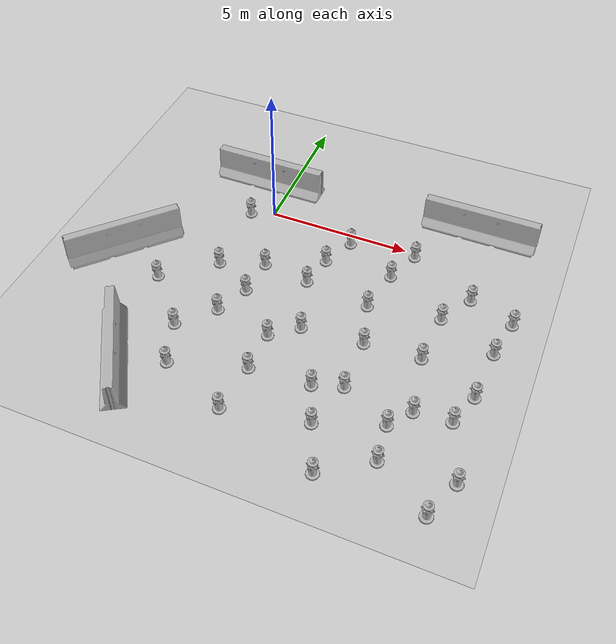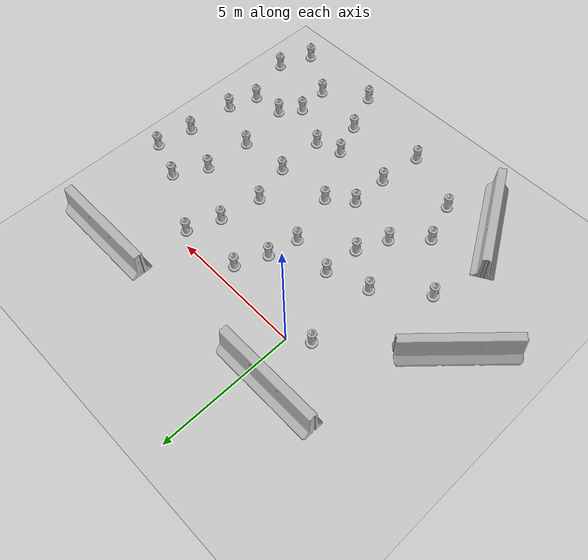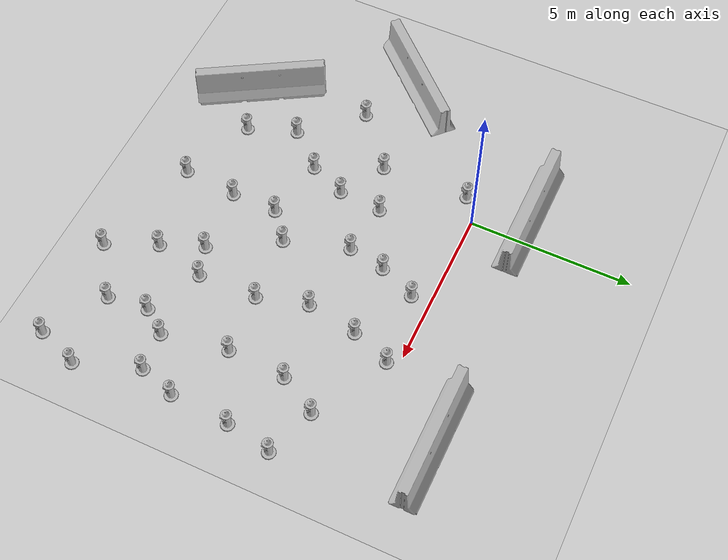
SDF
<sdf version="1.7">
 <world name="default">
  <light name="sun" type="directional">
   <pose>0 0 10 0 -0 0</pose>
   <diffuse>0.8 0.8 0.8 1</diffuse>
   <specular>0.2 0.2 0.2 1</specular>
   <attenuation>
    <range>1000</range>
    <constant>0.9</constant>
    <linear>0.01</linear>
    <quadratic>0.001</quadratic>
   </attenuation>
   <direction>-0.5 0.1 -0.9</direction>
   <spot><inner_angle>0</inner_angle><outer_angle>0</outer_angle><falloff>0</falloff></spot>
  </light>
  <model name="ground_plane">
   <static>1</static>
   <link name="link">
    <collision name="collision">
     <geometry><plane><normal>0 0 1</normal><size>100 100</size></plane></geometry>
     <surface>
      <contact><collide_bitmask>65535</collide_bitmask></contact>
      <friction><ode><mu>100</mu><mu2>50</mu2></ode></friction>
     </surface>
    </collision>
    <visual name="visual">
     <cast_shadows>0</cast_shadows>
     <geometry><plane><normal>0 0 1</normal><size>100 100</size></plane></geometry>
     <material>
      <script><uri>file://media/materials/scripts/gazebo.material</uri><name>Gazebo/Grey</name></script>
     </material>
    </visual>
   </link>
  </model>
  <gravity>0 0 -9.8</gravity>
  <magnetic_field>6e-06 2.3e-05 -4.2e-05</magnetic_field>
  <atmosphere type="adiabatic"/>
  <physics type="ode">
   <max_step_size>0.001</max_step_size>
   <real_time_factor>1</real_time_factor>
   <real_time_update_rate>1000</real_time_update_rate>
  </physics>
  <scene><ambient>0.4 0.4 0.4 1</ambient><background>0.7 0.7 0.7 1</background><shadows>1</shadows></scene>
  <spherical_coordinates>
   <surface_model>EARTH_WGS84</surface_model>
   <latitude_deg>0</latitude_deg>
   <longitude_deg>0</longitude_deg>
   <elevation>0</elevation>
   <heading_deg>0</heading_deg>
  </spherical_coordinates>
  <model name="jersey_barrier">
   <static>1</static>
   <link name="link">
    <visual name="visual">
     <geometry><mesh><uri>model://jersey_barrier/meshes/jersey_barrier.dae</uri></mesh></geometry>
    </visual>
    <collision name="upright">
     <pose>0 0 0.5715 0 -0 0</pose>
     <geometry><box><size>4.06542 0.3063 1.143</size></box></geometry>
    </collision>
    <collision name="base">
     <pose>0 0 0.032258 0 -0 0</pose>
     <geometry><box><size>4.06542 0.8107 0.064516</size></box></geometry>
    </collision>
    <collision name="base2">
     <pose>0 0 0.1 0 -0 0</pose>
     <geometry><box><size>4.06542 0.65 0.1</size></box></geometry>
    </collision>
    <collision name="base3">
     <pose>0 0 0.2 0 -0 0</pose>
     <geometry><box><size>4.06542 0.5 0.1</size></box></geometry>
    </collision>
    <collision name="left-angle">
     <pose>0 -0.224 0.2401 0.9 -0 0</pose>
     <geometry><box><size>4.06542 0.5 0.064516</size></box></geometry>
    </collision>
    <collision name="right-angle">
     <pose>0 0.224 0.2401 -0.9 0 0</pose>
     <geometry><box><size>4.06542 0.5 0.064516</size></box></geometry>
    </collision>
   </link>
   <pose>-0.80729 1.52063 0 0 -0 0</pose>
  </model>
  <model name="fire_hydrant">
   <static>1</static>
   <link name="link">
    <collision name="collision">
     <geometry><mesh><uri>model://fire_hydrant/meshes/fire_hydrant.dae</uri></mesh></geometry>
    </collision>
    <visual name="visual">
     <geometry><mesh><uri>model://fire_hydrant/meshes/fire_hydrant.dae</uri></mesh></geometry>
    </visual>
   </link>
   <pose>3.05372 -4.76767 0 0 -0 0</pose>
  </model>
  <model name="jersey_barrier_0">
   <static>1</static>
   <link name="link">
    <visual name="visual">
     <geometry><mesh><uri>model://jersey_barrier/meshes/jersey_barrier.dae</uri></mesh></geometry>
    </visual>
    <collision name="upright">
     <pose>0 0 0.5715 0 -0 0</pose>
     <geometry><box><size>4.06542 0.3063 1.143</size></box></geometry>
    </collision>
    <collision name="base">
     <pose>0 0 0.032258 0 -0 0</pose>
     <geometry><box><size>4.06542 0.8107 0.064516</size></box></geometry>
    </collision>
    <collision name="base2">
     <pose>0 0 0.1 0 -0 0</pose>
     <geometry><box><size>4.06542 0.65 0.1</size></box></geometry>
    </collision>
    <collision name="base3">
     <pose>0 0 0.2 0 -0 0</pose>
     <geometry><box><size>4.06542 0.5 0.1</size></box></geometry>
    </collision>
    <collision name="left-angle">
     <pose>0 -0.224 0.2401 0.9 -0 0</pose>
     <geometry><box><size>4.06542 0.5 0.064516</size></box></geometry>
    </collision>
    <collision name="right-angle">
     <pose>0 0.224 0.2401 -0.9 0 0</pose>
     <geometry><box><size>4.06542 0.5 0.064516</size></box></geometry>
    </collision>
   </link>
   <pose>-4.13922 -3.53608 0 0 -0 0.815416</pose>
  </model>
  <model name="fire_hydrant_0">
   <static>1</static>
   <link name="link">
    <collision name="collision">
     <geometry><mesh><uri>model://fire_hydrant/meshes/fire_hydrant.dae</uri></mesh></geometry>
    </collision>
    <visual name="visual">
     <geometry><mesh><uri>model://fire_hydrant/meshes/fire_hydrant.dae</uri></mesh></geometry>
    </visual>
   </link>
   <pose>7.07143 -2.70445 0 0 -0 0</pose>
  </model>
  <model name="jersey_barrier_1">
   <static>1</static>
   <link name="link">
    <visual name="visual">
     <geometry><mesh><uri>model://jersey_barrier/meshes/jersey_barrier.dae</uri></mesh></geometry>
    </visual>
    <collision name="upright">
     <pose>0 0 0.5715 0 -0 0</pose>
     <geometry><box><size>4.06542 0.3063 1.143</size></box></geometry>
    </collision>
    <collision name="base">
     <pose>0 0 0.032258 0 -0 0</pose>
     <geometry><box><size>4.06542 0.8107 0.064516</size></box></geometry>
    </collision>
    <collision name="base2">
     <pose>0 0 0.1 0 -0 0</pose>
     <geometry><box><size>4.06542 0.65 0.1</size></box></geometry>
    </collision>
    <collision name="base3">
     <pose>0 0 0.2 0 -0 0</pose>
     <geometry><box><size>4.06542 0.5 0.1</size></box></geometry>
    </collision>
    <collision name="left-angle">
     <pose>0 -0.224 0.2401 0.9 -0 0</pose>
     <geometry><box><size>4.06542 0.5 0.064516</size></box></geometry>
    </collision>
    <collision name="right-angle">
     <pose>0 0.224 0.2401 -0.9 0 0</pose>
     <geometry><box><size>4.06542 0.5 0.064516</size></box></geometry>
    </collision>
   </link>
   <pose>7.14978 1.80015 0 0 -0 0</pose>
  </model>
  <model name="jersey_barrier_2">
   <static>1</static>
   <link name="link">
    <visual name="visual">
     <geometry><mesh><uri>model://jersey_barrier/meshes/jersey_barrier.dae</uri></mesh></geometry>
    </visual>
    <collision name="upright">
     <pose>0 0 0.5715 0 -0 0</pose>
     <geometry><box><size>4.06542 0.3063 1.143</size></box></geometry>
    </collision>
    <collision name="base">
     <pose>0 0 0.032258 0 -0 0</pose>
     <geometry><box><size>4.06542 0.8107 0.064516</size></box></geometry>
    </collision>
    <collision name="base2">
     <pose>0 0 0.1 0 -0 0</pose>
     <geometry><box><size>4.06542 0.65 0.1</size></box></geometry>
    </collision>
    <collision name="base3">
     <pose>0 0 0.2 0 -0 0</pose>
     <geometry><box><size>4.06542 0.5 0.1</size></box></geometry>
    </collision>
    <collision name="left-angle">
     <pose>0 -0.224 0.2401 0.9 -0 0</pose>
     <geometry><box><size>4.06542 0.5 0.064516</size></box></geometry>
    </collision>
    <collision name="right-angle">
     <pose>0 0.224 0.2401 -0.9 0 0</pose>
     <geometry><box><size>4.06542 0.5 0.064516</size></box></geometry>
    </collision>
   </link>
   <pose>-1.89646 -8.02141 0 0 0 -1.03685</pose>
  </model>
  <model name="fire_hydrant_0_clone">
   <static>1</static>
   <link name="link">
    <collision name="collision">
     <geometry><mesh><uri>model://fire_hydrant/meshes/fire_hydrant.dae</uri></mesh></geometry>
    </collision>
    <visual name="visual">
     <geometry><mesh><uri>model://fire_hydrant/meshes/fire_hydrant.dae</uri></mesh></geometry>
    </visual>
   </link>
   <pose>7.32944 -6.48468 0 0 -0 0</pose>
  </model>
  <model name="fire_hydrant_0_clone_0">
   <static>1</static>
   <link name="link">
    <collision name="collision">
     <geometry><mesh><uri>model://fire_hydrant/meshes/fire_hydrant.dae</uri></mesh></geometry>
    </collision>
    <visual name="visual">
     <geometry><mesh><uri>model://fire_hydrant/meshes/fire_hydrant.dae</uri></mesh></geometry>
    </visual>
   </link>
   <pose>6.91722 -8.45251 0 0 -0 0</pose>
  </model>
  <model name="fire_hydrant_0_clone_1">
   <static>1</static>
   <link name="link">
    <collision name="collision">
     <geometry><mesh><uri>model://fire_hydrant/meshes/fire_hydrant.dae</uri></mesh></geometry>
    </collision>
    <visual name="visual">
     <geometry><mesh><uri>model://fire_hydrant/meshes/fire_hydrant.dae</uri></mesh></geometry>
    </visual>
   </link>
   <pose>8.86723 -5.28161 0 0 -0 0</pose>
  </model>
  <model name="fire_hydrant_0_clone_2">
   <static>1</static>
   <link name="link">
    <collision name="collision">
     <geometry><mesh><uri>model://fire_hydrant/meshes/fire_hydrant.dae</uri></mesh></geometry>
    </collision>
    <visual name="visual">
     <geometry><mesh><uri>model://fire_hydrant/meshes/fire_hydrant.dae</uri></mesh></geometry>
    </visual>
   </link>
   <pose>4.69183 -3.09297 0 0 -0 0</pose>
  </model>
  <model name="fire_hydrant_0_clone_3">
   <static>1</static>
   <link name="link">
    <collision name="collision">
     <geometry><mesh><uri>model://fire_hydrant/meshes/fire_hydrant.dae</uri></mesh></geometry>
    </collision>
    <visual name="visual">
     <geometry><mesh><uri>model://fire_hydrant/meshes/fire_hydrant.dae</uri></mesh></geometry>
    </visual>
   </link>
   <pose>0.259919 -5.0982 0 0 -0 0</pose>
  </model>
  <model name="fire_hydrant_0_clone_4">
   <static>1</static>
   <link name="link">
    <collision name="collision">
     <geometry><mesh><uri>model://fire_hydrant/meshes/fire_hydrant.dae</uri></mesh></geometry>
    </collision>
    <visual name="visual">
     <geometry><mesh><uri>model://fire_hydrant/meshes/fire_hydrant.dae</uri></mesh></geometry>
    </visual>
   </link>
   <pose>2.02933 -8.55658 0 0 -0 0</pose>
  </model>
  <model name="fire_hydrant_0_clone_5">
   <static>1</static>
   <link name="link">
    <collision name="collision">
     <geometry><mesh><uri>model://fire_hydrant/meshes/fire_hydrant.dae</uri></mesh></geometry>
    </collision>
    <visual name="visual">
     <geometry><mesh><uri>model://fire_hydrant/meshes/fire_hydrant.dae</uri></mesh></geometry>
    </visual>
   </link>
   <pose>8.98756 -3.45908 0 0 -0 0</pose>
  </model>
  <model name="fire_hydrant_0_clone_6">
   <static>1</static>
   <link name="link">
    <collision name="collision">
     <geometry><mesh><uri>model://fire_hydrant/meshes/fire_hydrant.dae</uri></mesh></geometry>
    </collision>
    <visual name="visual">
     <geometry><mesh><uri>model://fire_hydrant/meshes/fire_hydrant.dae</uri></mesh></geometry>
    </visual>
   </link>
   <pose>0.841102 -2.64089 0 0 -0 0</pose>
  </model>
  <model name="fire_hydrant_0_clone_7">
   <static>1</static>
   <link name="link">
    <collision name="collision">
     <geometry><mesh><uri>model://fire_hydrant/meshes/fire_hydrant.dae</uri></mesh></geometry>
    </collision>
    <visual name="visual">
     <geometry><mesh><uri>model://fire_hydrant/meshes/fire_hydrant.dae</uri></mesh></geometry>
    </visual>
   </link>
   <pose>-0.705447 -0.46023 0 0 -0 0</pose>
  </model>
  <model name="fire_hydrant_0_clone_8">
   <static>1</static>
   <link name="link">
    <collision name="collision">
     <geometry><mesh><uri>model://fire_hydrant/meshes/fire_hydrant.dae</uri></mesh></geometry>
    </collision>
    <visual name="visual">
     <geometry><mesh><uri>model://fire_hydrant/meshes/fire_hydrant.dae</uri></mesh></geometry>
    </visual>
   </link>
   <pose>-0.750193 -6.18785 0 0 -0 0</pose>
  </model>
  <model name="fire_hydrant_0_clone_9">
   <static>1</static>
   <link name="link">
    <collision name="collision">
     <geometry><mesh><uri>model://fire_hydrant/meshes/fire_hydrant.dae</uri></mesh></geometry>
    </collision>
    <visual name="visual">
     <geometry><mesh><uri>model://fire_hydrant/meshes/fire_hydrant.dae</uri></mesh></geometry>
    </visual>
   </link>
   <pose>5.11573 -4.61002 0 0 -0 0</pose>
  </model>
  <model name="fire_hydrant_0_clone_10">
   <static>1</static>
   <link name="link">
    <collision name="collision">
     <geometry><mesh><uri>model://fire_hydrant/meshes/fire_hydrant.dae</uri></mesh></geometry>
    </collision>
    <visual name="visual">
     <geometry><mesh><uri>model://fire_hydrant/meshes/fire_hydrant.dae</uri></mesh></geometry>
    </visual>
   </link>
   <pose>5.15438 -6.4228 0 0 -0 0</pose>
  </model>
  <model name="fire_hydrant_0_clone_11">
   <static>1</static>
   <link name="link">
    <collision name="collision">
     <geometry><mesh><uri>model://fire_hydrant/meshes/fire_hydrant.dae</uri></mesh></geometry>
    </collision>
    <visual name="visual">
     <geometry><mesh><uri>model://fire_hydrant/meshes/fire_hydrant.dae</uri></mesh></geometry>
    </visual>
   </link>
   <pose>9.17461 -8.28128 0 0 -0 0</pose>
  </model>
  <model name="fire_hydrant_0_clone_12">
   <static>1</static>
   <link name="link">
    <collision name="collision">
     <geometry><mesh><uri>model://fire_hydrant/meshes/fire_hydrant.dae</uri></mesh></geometry>
    </collision>
    <visual name="visual">
     <geometry><mesh><uri>model://fire_hydrant/meshes/fire_hydrant.dae</uri></mesh></geometry>
    </visual>
   </link>
   <pose>5.39431 -9.5054 0 0 -0 0</pose>
  </model>
  <model name="fire_hydrant_0_clone_13">
   <static>1</static>
   <link name="link">
    <collision name="collision">
     <geometry><mesh><uri>model://fire_hydrant/meshes/fire_hydrant.dae</uri></mesh></geometry>
    </collision>
    <visual name="visual">
     <geometry><mesh><uri>model://fire_hydrant/meshes/fire_hydrant.dae</uri></mesh></geometry>
    </visual>
   </link>
   <pose>6.97624 -4.49145 0 0 -0 0</pose>
  </model>
  <model name="fire_hydrant_0_clone_14">
   <static>1</static>
   <link name="link">
    <collision name="collision">
     <geometry><mesh><uri>model://fire_hydrant/meshes/fire_hydrant.dae</uri></mesh></geometry>
    </collision>
    <visual name="visual">
     <geometry><mesh><uri>model://fire_hydrant/meshes/fire_hydrant.dae</uri></mesh></geometry>
    </visual>
   </link>
   <pose>7.73351 -1.54643 0 0 -0 0</pose>
  </model>
  <model name="fire_hydrant_0_clone_4_clone">
   <static>1</static>
   <link name="link">
    <collision name="collision">
     <geometry><mesh><uri>model://fire_hydrant/meshes/fire_hydrant.dae</uri></mesh></geometry>
    </collision>
    <visual name="visual">
     <geometry><mesh><uri>model://fire_hydrant/meshes/fire_hydrant.dae</uri></mesh></geometry>
    </visual>
   </link>
   <pose>2.18969 -6.87679 0 0 -0 0</pose>
  </model>
  <model name="fire_hydrant_0_clone_4_clone_0">
   <static>1</static>
   <link name="link">
    <collision name="collision">
     <geometry><mesh><uri>model://fire_hydrant/meshes/fire_hydrant.dae</uri></mesh></geometry>
    </collision>
    <visual name="visual">
     <geometry><mesh><uri>model://fire_hydrant/meshes/fire_hydrant.dae</uri></mesh></geometry>
    </visual>
   </link>
   <pose>4.73257 -7.99341 0 0 -0 0</pose>
  </model>
  <model name="fire_hydrant_0_clone_4_clone_1">
   <static>1</static>
   <link name="link">
    <collision name="collision">
     <geometry><mesh><uri>model://fire_hydrant/meshes/fire_hydrant.dae</uri></mesh></geometry>
    </collision>
    <visual name="visual">
     <geometry><mesh><uri>model://fire_hydrant/meshes/fire_hydrant.dae</uri></mesh></geometry>
    </visual>
   </link>
   <pose>2.19824 -5.46422 0 0 -0 0</pose>
  </model>
  <model name="fire_hydrant_0_clone_4_clone_2">
   <static>1</static>
   <link name="link">
    <collision name="collision">
     <geometry><mesh><uri>model://fire_hydrant/meshes/fire_hydrant.dae</uri></mesh></geometry>
    </collision>
    <visual name="visual">
     <geometry><mesh><uri>model://fire_hydrant/meshes/fire_hydrant.dae</uri></mesh></geometry>
    </visual>
   </link>
   <pose>4.21521 -6.7376 0 0 -0 0</pose>
  </model>
  <model name="fire_hydrant_0_clone_4_clone_3">
   <static>1</static>
   <link name="link">
    <collision name="collision">
     <geometry><mesh><uri>model://fire_hydrant/meshes/fire_hydrant.dae</uri></mesh></geometry>
    </collision>
    <visual name="visual">
     <geometry><mesh><uri>model://fire_hydrant/meshes/fire_hydrant.dae</uri></mesh></geometry>
    </visual>
   </link>
   <pose>6.77654 -7.22004 0 0 -0 0</pose>
  </model>
  <model name="fire_hydrant_0_clone_4_clone_4">
   <static>1</static>
   <link name="link">
    <collision name="collision">
     <geometry><mesh><uri>model://fire_hydrant/meshes/fire_hydrant.dae</uri></mesh></geometry>
    </collision>
    <visual name="visual">
     <geometry><mesh><uri>model://fire_hydrant/meshes/fire_hydrant.dae</uri></mesh></geometry>
    </visual>
   </link>
   <pose>2.45802 -2.83659 0 0 -0 0</pose>
  </model>
  <model name="fire_hydrant_0_clone_4_clone_5">
   <static>1</static>
   <link name="link">
    <collision name="collision">
     <geometry><mesh><uri>model://fire_hydrant/meshes/fire_hydrant.dae</uri></mesh></geometry>
    </collision>
    <visual name="visual">
     <geometry><mesh><uri>model://fire_hydrant/meshes/fire_hydrant.dae</uri></mesh></geometry>
    </visual>
   </link>
   <pose>4.96576 -1.53201 0 0 -0 0</pose>
  </model>
  <model name="fire_hydrant_0_clone_4_clone_6">
   <static>1</static>
   <link name="link">
    <collision name="collision">
     <geometry><mesh><uri>model://fire_hydrant/meshes/fire_hydrant.dae</uri></mesh></geometry>
    </collision>
    <visual name="visual">
     <geometry><mesh><uri>model://fire_hydrant/meshes/fire_hydrant.dae</uri></mesh></geometry>
    </visual>
   </link>
   <pose>2.68338 -1.69608 0 0 -0 0</pose>
  </model>
  <model name="fire_hydrant_0_clone_4_clone_7">
   <static>1</static>
   <link name="link">
    <collision name="collision">
     <geometry><mesh><uri>model://fire_hydrant/meshes/fire_hydrant.dae</uri></mesh></geometry>
    </collision>
    <visual name="visual">
     <geometry><mesh><uri>model://fire_hydrant/meshes/fire_hydrant.dae</uri></mesh></geometry>
    </visual>
   </link>
   <pose>-0.631662 -3.16682 0 0 -0 0</pose>
  </model>
  <model name="fire_hydrant_0_clone_4_clone_8">
   <static>1</static>
   <link name="link">
    <collision name="collision">
     <geometry><mesh><uri>model://fire_hydrant/meshes/fire_hydrant.dae</uri></mesh></geometry>
    </collision>
    <visual name="visual">
     <geometry><mesh><uri>model://fire_hydrant/meshes/fire_hydrant.dae</uri></mesh></geometry>
    </visual>
   </link>
   <pose>0.740727 -3.97537 0 0 -0 0</pose>
  </model>
  <model name="fire_hydrant_0_clone_4_clone_9">
   <static>1</static>
   <link name="link">
    <collision name="collision">
     <geometry><mesh><uri>model://fire_hydrant/meshes/fire_hydrant.dae</uri></mesh></geometry>
    </collision>
    <visual name="visual">
     <geometry><mesh><uri>model://fire_hydrant/meshes/fire_hydrant.dae</uri></mesh></geometry>
    </visual>
   </link>
   <pose>-2.27419 -4.52384 0 0 -0 0</pose>
  </model>
  <model name="fire_hydrant_0_clone_4_clone_10">
   <static>1</static>
   <link name="link">
    <collision name="collision">
     <geometry><mesh><uri>model://fire_hydrant/meshes/fire_hydrant.dae</uri></mesh></geometry>
    </collision>
    <visual name="visual">
     <geometry><mesh><uri>model://fire_hydrant/meshes/fire_hydrant.dae</uri></mesh></geometry>
    </visual>
   </link>
   <pose>-0.221434 -7.64917 0 0 -0 0</pose>
  </model>
  <model name="fire_hydrant_0_clone_4_clone_11">
   <static>1</static>
   <link name="link">
    <collision name="collision">
     <geometry><mesh><uri>model://fire_hydrant/meshes/fire_hydrant.dae</uri></mesh></geometry>
    </collision>
    <visual name="visual">
     <geometry><mesh><uri>model://fire_hydrant/meshes/fire_hydrant.dae</uri></mesh></geometry>
    </visual>
   </link>
   <pose>8.69033 -9.54006 0 0 -0 0</pose>
  </model>
  <model name="fire_hydrant_0_clone_4_clone_12">
   <static>1</static>
   <link name="link">
    <collision name="collision">
     <geometry><mesh><uri>model://fire_hydrant/meshes/fire_hydrant.dae</uri></mesh></geometry>
    </collision>
    <visual name="visual">
     <geometry><mesh><uri>model://fire_hydrant/meshes/fire_hydrant.dae</uri></mesh></geometry>
    </visual>
   </link>
   <pose>8.50999 -6.38119 0 0 -0 0</pose>
  </model>
  <model name="fire_hydrant_0_clone_4_clone_13">
   <static>1</static>
   <link name="link">
    <collision name="collision">
     <geometry><mesh><uri>model://fire_hydrant/meshes/fire_hydrant.dae</uri></mesh></geometry>
    </collision>
    <visual name="visual">
     <geometry><mesh><uri>model://fire_hydrant/meshes/fire_hydrant.dae</uri></mesh></geometry>
    </visual>
   </link>
   <pose>3.17073 -0.572072 0 0 -0 0</pose>
  </model>
  <model name="fire_hydrant_0_clone_4_clone_14">
   <static>1</static>
   <link name="link">
    <collision name="collision">
     <geometry><mesh><uri>model://fire_hydrant/meshes/fire_hydrant.dae</uri></mesh></geometry>
    </collision>
    <visual name="visual">
     <geometry><mesh><uri>model://fire_hydrant/meshes/fire_hydrant.dae</uri></mesh></geometry>
    </visual>
   </link>
   <pose>5.43085 -0.331671 0 0 -0 0</pose>
  </model>
  <model name="fire_hydrant_0_clone_4_clone_15">
   <static>1</static>
   <link name="link">
    <collision name="collision">
     <geometry><mesh><uri>model://fire_hydrant/meshes/fire_hydrant.dae</uri></mesh></geometry>
    </collision>
    <visual name="visual">
     <geometry><mesh><uri>model://fire_hydrant/meshes/fire_hydrant.dae</uri></mesh></geometry>
    </visual>
   </link>
   <pose>9.24369 -2.0722 0 0 -0 0</pose>
  </model>
 </world>
</sdf>
